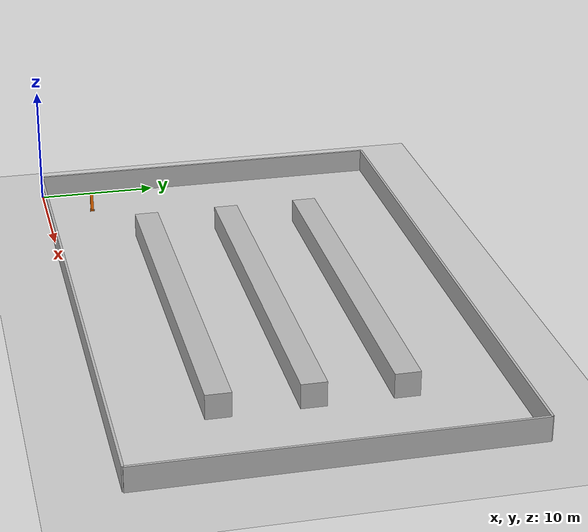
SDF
<?xml version="1.0"?>
<sdf version="1.6">
<world name="warehouse">
  <light name="sun" type="directional">
    <cast_shadows>true</cast_shadows>
    <pose>0 0 10 0 0 0</pose>
    <diffuse>0.8 0.8 0.8 1</diffuse>
    <specular>0.2 0.2 0.2 1</specular>
    <direction>-0.5 0.1 -0.9</direction>
  </light>
  <model name="ground_plane">
    <static>true</static>
    <link name="link">
      <collision name="collision">
        <geometry><plane><normal>0 0 1</normal><size>100 100</size></plane></geometry>
        <surface><friction><ode><mu>100</mu><mu2>50</mu2></ode></friction></surface>
      </collision>
      <visual name="visual">
        <geometry><plane><normal>0 0 1</normal><size>100 100</size></plane></geometry>
      </visual>
    </link>
  </model>

  <plugin name="GazeboPlugin" filename="lib/libGazeboCoSimPlugin.so">
    <portNumber>14581</portNumber>
  </plugin>

  <gui fullscreen="0">
    <camera name="user_camera">
      <pose>25 -20 40 0 0.85 1.5708</pose>
    </camera>
  </gui>

  <model name="wall_n">
    <static>true</static>
    <pose>25 30 1 0 0 0</pose>
    <link name="link">
      <collision name="collision">
        <geometry><box><size>50 0.2 2</size></box></geometry>
      </collision>
      <visual name="visual">
        <geometry><box><size>50 0.2 2</size></box></geometry>
      </visual>
    </link>
  </model>

  <model name="wall_s">
    <static>true</static>
    <pose>25 0 1 0 0 0</pose>
    <link name="link">
      <collision name="collision">
        <geometry><box><size>50 0.2 2</size></box></geometry>
      </collision>
      <visual name="visual">
        <geometry><box><size>50 0.2 2</size></box></geometry>
      </visual>
    </link>
  </model>

  <model name="wall_w">
    <static>true</static>
    <pose>0 15 1 0 0 0</pose>
    <link name="link">
      <collision name="collision">
        <geometry><box><size>0.2 30 2</size></box></geometry>
      </collision>
      <visual name="visual">
        <geometry><box><size>0.2 30 2</size></box></geometry>
      </visual>
    </link>
  </model>

  <model name="wall_e">
    <static>true</static>
    <pose>50 15 1 0 0 0</pose>
    <link name="link">
      <collision name="collision">
        <geometry><box><size>0.2 30 2</size></box></geometry>
      </collision>
      <visual name="visual">
        <geometry><box><size>0.2 30 2</size></box></geometry>
      </visual>
    </link>
  </model>

  <model name="rack_1">
    <static>true</static>
    <pose>26 8 1 0 0 0</pose>
    <link name="link">
      <collision name="collision">
        <geometry><box><size>32 2 2</size></box></geometry>
      </collision>
      <visual name="visual">
        <geometry><box><size>32 2 2</size></box></geometry>
      </visual>
    </link>
  </model>

  <model name="rack_2">
    <static>true</static>
    <pose>26 15 1 0 0 0</pose>
    <link name="link">
      <collision name="collision">
        <geometry><box><size>32 2 2</size></box></geometry>
      </collision>
      <visual name="visual">
        <geometry><box><size>32 2 2</size></box></geometry>
      </visual>
    </link>
  </model>

  <model name="rack_3">
    <static>true</static>
    <pose>26 22 1 0 0 0</pose>
    <link name="link">
      <collision name="collision">
        <geometry><box><size>32 2 2</size></box></geometry>
      </collision>
      <visual name="visual">
        <geometry><box><size>32 2 2</size></box></geometry>
      </visual>
    </link>
  </model>

  <model name="warehouse_robot">
    <pose>4 4 0 0 0 0</pose>
    <link name="chassis">
      <pose>0 0 0.1 0 0 0</pose>
      <inertial>
        <mass>10</mass>
        <inertia><ixx>0.1</ixx><iyy>0.15</iyy><izz>0.2</izz>
          <ixy>0</ixy><ixz>0</ixz><iyz>0</iyz></inertia>
      </inertial>
      <collision name="collision">
        <geometry><box><size>0.4 0.3 0.1</size></box></geometry>
      </collision>
      <visual name="visual">
        <geometry><box><size>0.4 0.3 0.1</size></box></geometry>
        <material><ambient>1 0.45 0 1</ambient><diffuse>1 0.45 0 1</diffuse></material>
      </visual>
      <visual name="beacon">
        <pose>0 0 0.85 0 0 0</pose>
        <geometry><box><size>0.25 0.25 1.6</size></box></geometry>
        <material><ambient>1 0.45 0 1</ambient><diffuse>1 0.45 0 1</diffuse></material>
      </visual>
      <collision name="caster">
        <pose>-0.15 0 -0.05 0 0 0</pose>
        <geometry><sphere><radius>0.05</radius></sphere></geometry>
        <surface><friction><ode><mu>0</mu><mu2>0</mu2></ode></friction></surface>
      </collision>
      <visual name="caster_visual">
        <pose>-0.15 0 -0.05 0 0 0</pose>
        <geometry><sphere><radius>0.05</radius></sphere></geometry>
      </visual>
    </link>
    <link name="left_wheel">
      <pose>0.1 0.17 0.1 -1.5707 0 0</pose>
      <inertial>
        <mass>1</mass>
        <inertia><ixx>0.003</ixx><iyy>0.003</iyy><izz>0.005</izz>
          <ixy>0</ixy><ixz>0</ixz><iyz>0</iyz></inertia>
      </inertial>
      <collision name="collision">
        <geometry><cylinder><radius>0.1</radius><length>0.05</length></cylinder></geometry>
      </collision>
      <visual name="visual">
        <geometry><cylinder><radius>0.1</radius><length>0.05</length></cylinder></geometry>
      </visual>
    </link>
    <link name="right_wheel">
      <pose>0.1 -0.17 0.1 -1.5707 0 0</pose>
      <inertial>
        <mass>1</mass>
        <inertia><ixx>0.003</ixx><iyy>0.003</iyy><izz>0.005</izz>
          <ixy>0</ixy><ixz>0</ixz><iyz>0</iyz></inertia>
      </inertial>
      <collision name="collision">
        <geometry><cylinder><radius>0.1</radius><length>0.05</length></cylinder></geometry>
      </collision>
      <visual name="visual">
        <geometry><cylinder><radius>0.1</radius><length>0.05</length></cylinder></geometry>
      </visual>
    </link>
    <joint type="revolute" name="left_wheel_joint">
      <child>left_wheel</child>
      <parent>chassis</parent>
      <axis><xyz>0 0 1</xyz></axis>
    </joint>
    <joint type="revolute" name="right_wheel_joint">
      <child>right_wheel</child>
      <parent>chassis</parent>
      <axis><xyz>0 0 1</xyz></axis>
    </joint>
    <link name="lidar">
      <pose>0.15 0 0.2 0 0 0</pose>
      <inertial>
        <mass>0.1</mass>
        <inertia><ixx>0.0001</ixx><iyy>0.0001</iyy><izz>0.0001</izz>
          <ixy>0</ixy><ixz>0</ixz><iyz>0</iyz></inertia>
      </inertial>
      <visual name="visual">
        <geometry><cylinder><radius>0.03</radius><length>0.04</length></cylinder></geometry>
      </visual>
      <sensor name="lidar" type="ray">
        <always_on>true</always_on>
        <update_rate>10</update_rate>
        <ray>
          <scan><horizontal>
            <samples>640</samples>
            <resolution>1</resolution>
            <min_angle>-2.356</min_angle>
            <max_angle>2.356</max_angle>
          </horizontal></scan>
          <range><min>0.12</min><max>8</max></range>
        </ray>
      </sensor>
    </link>
    <joint type="fixed" name="lidar_joint">
      <child>lidar</child>
      <parent>chassis</parent>
    </joint>
  </model>
</world>
</sdf>
